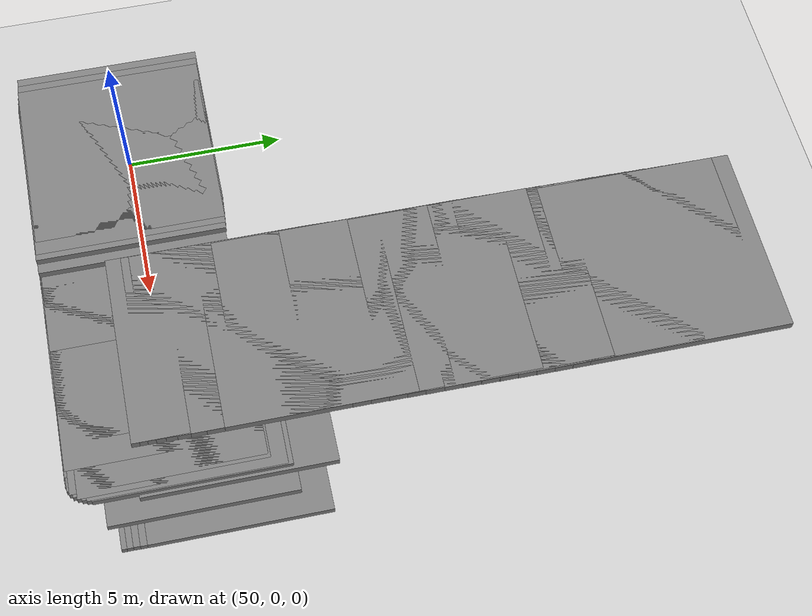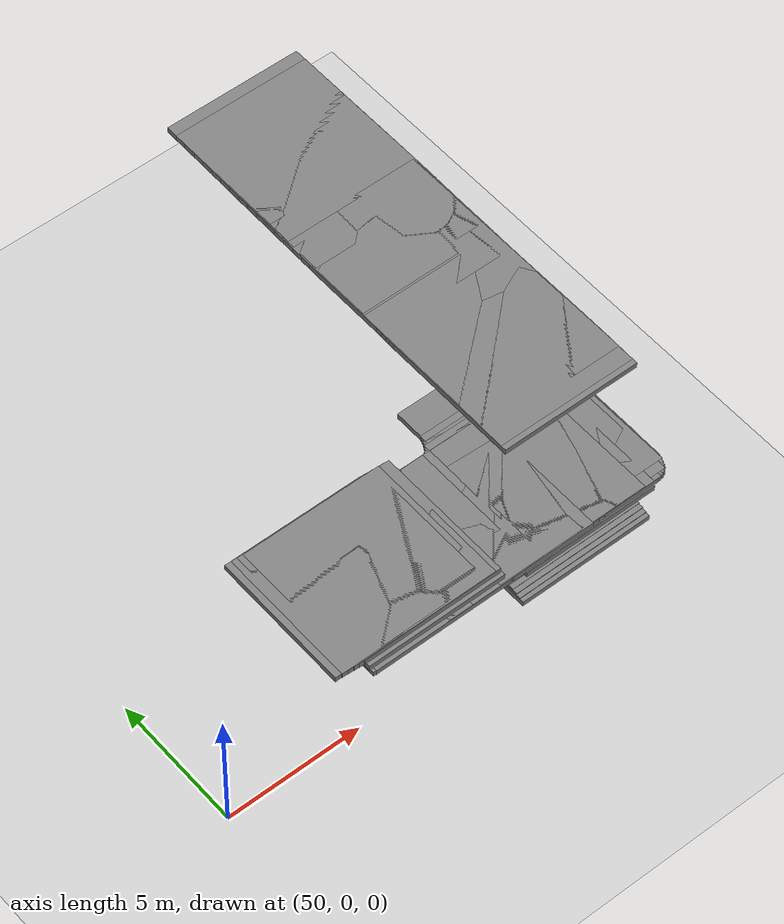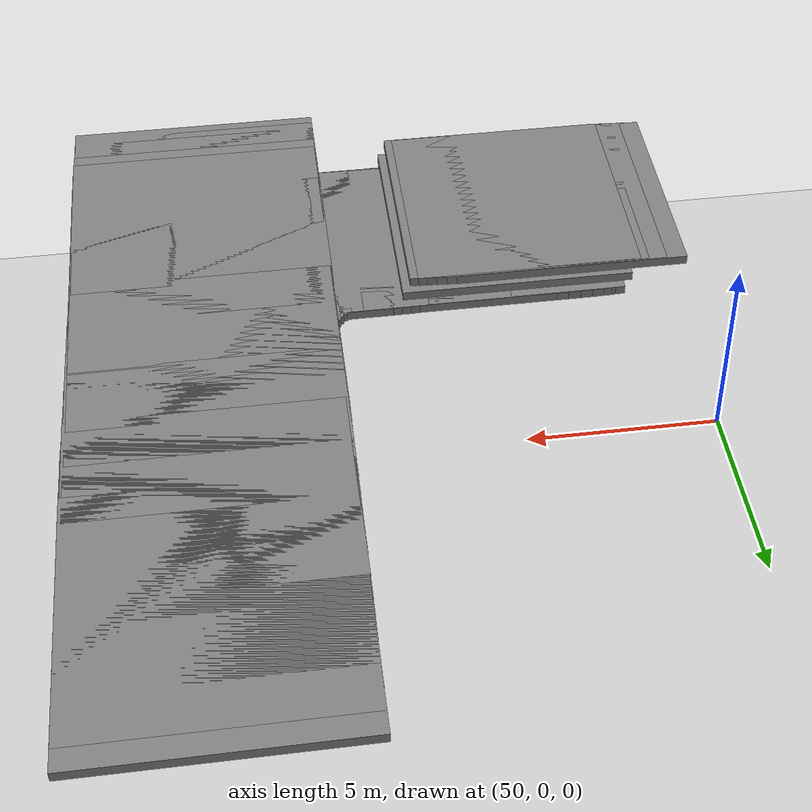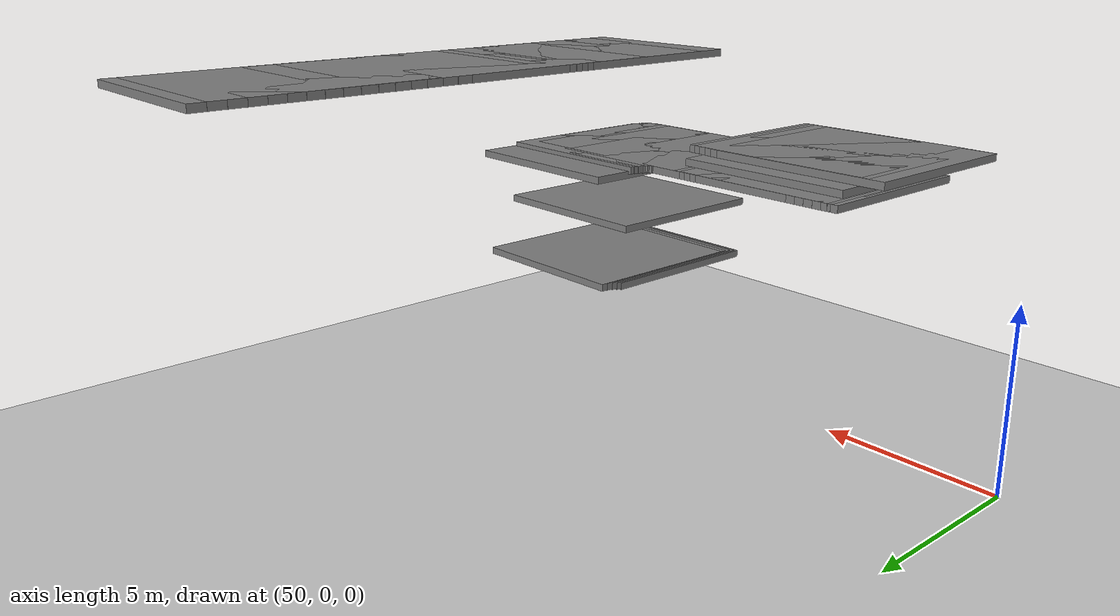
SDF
<sdf version="1.6">
 <world name="default">
  <include><uri>model://sun</uri></include>
  <include><uri>model://ground_plane</uri></include>
  <model name="road_segment_486">
   <static>true</static>
   <link name="link">
    <visual name="visual">
     <geometry><box><size>5.0 5.0 0.2</size></box></geometry>
     <material><ambient>0.5 0.5 0.5 1</ambient><diffuse>0.5 0.5 0.5 1</diffuse></material>
     <pose>62.56571389182134 12.816866879140125 10.0 0 0 0</pose>
    </visual>
    <collision name="collision">
     <geometry><box><size>5.0 5.0 0.2</size></box></geometry>
     <pose>62.56571389182134 12.816866879140125 10.0 0 0 0</pose>
    </collision>
   </link>
  </model>
  <model name="road_segment_487">
   <static>true</static>
   <link name="link">
    <visual name="visual">
     <geometry><box><size>5.0 5.0 0.2</size></box></geometry>
     <material><ambient>0.5 0.5 0.5 1</ambient><diffuse>0.5 0.5 0.5 1</diffuse></material>
     <pose>62.5644501631258 12.390904633492955 10.0 0 0 0</pose>
    </visual>
    <collision name="collision">
     <geometry><box><size>5.0 5.0 0.2</size></box></geometry>
     <pose>62.5644501631258 12.390904633492955 10.0 0 0 0</pose>
    </collision>
   </link>
  </model>
  <model name="road_segment_488">
   <static>true</static>
   <link name="link">
    <visual name="visual">
     <geometry><box><size>5.0 5.0 0.2</size></box></geometry>
     <material><ambient>0.5 0.5 0.5 1</ambient><diffuse>0.5 0.5 0.5 1</diffuse></material>
     <pose>62.56088874591072 11.954523167446627 10.0 0 0 0</pose>
    </visual>
    <collision name="collision">
     <geometry><box><size>5.0 5.0 0.2</size></box></geometry>
     <pose>62.56088874591072 11.954523167446627 10.0 0 0 0</pose>
    </collision>
   </link>
  </model>
  <model name="road_segment_489">
   <static>true</static>
   <link name="link">
    <visual name="visual">
     <geometry><box><size>5.0 5.0 0.2</size></box></geometry>
     <material><ambient>0.5 0.5 0.5 1</ambient><diffuse>0.5 0.5 0.5 1</diffuse></material>
     <pose>62.5576719819703 11.512421345102297 10.0 0 0 0</pose>
    </visual>
    <collision name="collision">
     <geometry><box><size>5.0 5.0 0.2</size></box></geometry>
     <pose>62.5576719819703 11.512421345102297 10.0 0 0 0</pose>
    </collision>
   </link>
  </model>
  <model name="road_segment_490">
   <static>true</static>
   <link name="link">
    <visual name="visual">
     <geometry><box><size>5.0 5.0 0.2</size></box></geometry>
     <material><ambient>0.5 0.5 0.5 1</ambient><diffuse>0.5 0.5 0.5 1</diffuse></material>
     <pose>62.552731951640226 11.069298030564745 10.0 0 0 0</pose>
    </visual>
    <collision name="collision">
     <geometry><box><size>5.0 5.0 0.2</size></box></geometry>
     <pose>62.552731951640226 11.069298030564745 10.0 0 0 0</pose>
    </collision>
   </link>
  </model>
  <model name="road_segment_491">
   <static>true</static>
   <link name="link">
    <visual name="visual">
     <geometry><box><size>5.0 5.0 0.2</size></box></geometry>
     <material><ambient>0.5 0.5 0.5 1</ambient><diffuse>0.5 0.5 0.5 1</diffuse></material>
     <pose>62.54434538853083 10.627196208224044 10.0 0 0 0</pose>
    </visual>
    <collision name="collision">
     <geometry><box><size>5.0 5.0 0.2</size></box></geometry>
     <pose>62.54434538853083 10.627196208224044 10.0 0 0 0</pose>
    </collision>
   </link>
  </model>
  <model name="road_segment_492">
   <static>true</static>
   <link name="link">
    <visual name="visual">
     <geometry><box><size>5.0 5.0 0.2</size></box></geometry>
     <material><ambient>0.5 0.5 0.5 1</ambient><diffuse>0.5 0.5 0.5 1</diffuse></material>
     <pose>62.53768209181109 10.18325569992756 10.0 0 0 0</pose>
    </visual>
    <collision name="collision">
     <geometry><box><size>5.0 5.0 0.2</size></box></geometry>
     <pose>62.53768209181109 10.18325569992756 10.0 0 0 0</pose>
    </collision>
   </link>
  </model>
  <model name="road_segment_493">
   <static>true</static>
   <link name="link">
    <visual name="visual">
     <geometry><box><size>5.0 5.0 0.2</size></box></geometry>
     <material><ambient>0.5 0.5 0.5 1</ambient><diffuse>0.5 0.5 0.5 1</diffuse></material>
     <pose>62.530674141800375 9.741562474462697 10.0 0 0 0</pose>
    </visual>
    <collision name="collision">
     <geometry><box><size>5.0 5.0 0.2</size></box></geometry>
     <pose>62.530674141800375 9.741562474462697 10.0 0 0 0</pose>
    </collision>
   </link>
  </model>
  <model name="road_segment_494">
   <static>true</static>
   <link name="link">
    <visual name="visual">
     <geometry><box><size>5.0 5.0 0.2</size></box></geometry>
     <material><ambient>0.5 0.5 0.5 1</ambient><diffuse>0.5 0.5 0.5 1</diffuse></material>
     <pose>62.52504480492097 9.300482144318844 10.0 0 0 0</pose>
    </visual>
    <collision name="collision">
     <geometry><box><size>5.0 5.0 0.2</size></box></geometry>
     <pose>62.52504480492097 9.300482144318844 10.0 0 0 0</pose>
    </collision>
   </link>
  </model>
  <model name="road_segment_495">
   <static>true</static>
   <link name="link">
    <visual name="visual">
     <geometry><box><size>5.0 5.0 0.2</size></box></geometry>
     <material><ambient>0.5 0.5 0.5 1</ambient><diffuse>0.5 0.5 0.5 1</diffuse></material>
     <pose>62.5225173475462 8.855111546953303 10.0 0 0 0</pose>
    </visual>
    <collision name="collision">
     <geometry><box><size>5.0 5.0 0.2</size></box></geometry>
     <pose>62.5225173475462 8.855111546953303 10.0 0 0 0</pose>
    </collision>
   </link>
  </model>
  <model name="road_segment_496">
   <static>true</static>
   <link name="link">
    <visual name="visual">
     <geometry><box><size>5.0 5.0 0.2</size></box></geometry>
     <material><ambient>0.5 0.5 0.5 1</ambient><diffuse>0.5 0.5 0.5 1</diffuse></material>
     <pose>62.51769220163557 8.412601127729507 10.0 0 0 0</pose>
    </visual>
    <collision name="collision">
     <geometry><box><size>5.0 5.0 0.2</size></box></geometry>
     <pose>62.51769220163557 8.412601127729507 10.0 0 0 0</pose>
    </collision>
   </link>
  </model>
  <model name="road_segment_497">
   <static>true</static>
   <link name="link">
    <visual name="visual">
     <geometry><box><size>5.0 5.0 0.2</size></box></geometry>
     <material><ambient>0.5 0.5 0.5 1</ambient><diffuse>0.5 0.5 0.5 1</diffuse></material>
     <pose>62.51079913606062 7.979488436708017 10.0 0 0 0</pose>
    </visual>
    <collision name="collision">
     <geometry><box><size>5.0 5.0 0.2</size></box></geometry>
     <pose>62.51079913606062 7.979488436708017 10.0 0 0 0</pose>
    </collision>
   </link>
  </model>
  <model name="road_segment_498">
   <static>true</static>
   <link name="link">
    <visual name="visual">
     <geometry><box><size>5.0 5.0 0.2</size></box></geometry>
     <material><ambient>0.5 0.5 0.5 1</ambient><diffuse>0.5 0.5 0.5 1</diffuse></material>
     <pose>62.50471026147078 7.549031625401241 10.0 0 0 0</pose>
    </visual>
    <collision name="collision">
     <geometry><box><size>5.0 5.0 0.2</size></box></geometry>
     <pose>62.50471026147078 7.549031625401241 10.0 0 0 0</pose>
    </collision>
   </link>
  </model>
  <model name="road_segment_499">
   <static>true</static>
   <link name="link">
    <visual name="visual">
     <geometry><box><size>5.0 5.0 0.2</size></box></geometry>
     <material><ambient>0.5 0.5 0.5 1</ambient><diffuse>0.5 0.5 0.5 1</diffuse></material>
     <pose>62.50137861311091 7.114693143748613 10.0 0 0 0</pose>
    </visual>
    <collision name="collision">
     <geometry><box><size>5.0 5.0 0.2</size></box></geometry>
     <pose>62.50137861311091 7.114693143748613 10.0 0 0 0</pose>
    </collision>
   </link>
  </model>
  <model name="road_segment_500">
   <static>true</static>
   <link name="link">
    <visual name="visual">
     <geometry><box><size>5.0 5.0 0.2</size></box></geometry>
     <material><ambient>0.5 0.5 0.5 1</ambient><diffuse>0.5 0.5 0.5 1</diffuse></material>
     <pose>62.49689812049127 6.679741766774971 10.0 0 0 0</pose>
    </visual>
    <collision name="collision">
     <geometry><box><size>5.0 5.0 0.2</size></box></geometry>
     <pose>62.49689812049127 6.679741766774971 10.0 0 0 0</pose>
    </collision>
   </link>
  </model>
  <model name="road_segment_501">
   <static>true</static>
   <link name="link">
    <visual name="visual">
     <geometry><box><size>5.0 5.0 0.2</size></box></geometry>
     <material><ambient>0.5 0.5 0.5 1</ambient><diffuse>0.5 0.5 0.5 1</diffuse></material>
     <pose>62.48885621065655 6.256026803955788 10.0 0 0 0</pose>
    </visual>
    <collision name="collision">
     <geometry><box><size>5.0 5.0 0.2</size></box></geometry>
     <pose>62.48885621065655 6.256026803955788 10.0 0 0 0</pose>
    </collision>
   </link>
  </model>
  <model name="road_segment_502">
   <static>true</static>
   <link name="link">
    <visual name="visual">
     <geometry><box><size>5.0 5.0 0.2</size></box></geometry>
     <material><ambient>0.5 0.5 0.5 1</ambient><diffuse>0.5 0.5 0.5 1</diffuse></material>
     <pose>62.48299710490559 5.847021328757448 10.0 0 0 0</pose>
    </visual>
    <collision name="collision">
     <geometry><box><size>5.0 5.0 0.2</size></box></geometry>
     <pose>62.48299710490559 5.847021328757448 10.0 0 0 0</pose>
    </collision>
   </link>
  </model>
  <model name="road_segment_503">
   <static>true</static>
   <link name="link">
    <visual name="visual">
     <geometry><box><size>5.0 5.0 0.2</size></box></geometry>
     <material><ambient>0.5 0.5 0.5 1</ambient><diffuse>0.5 0.5 0.5 1</diffuse></material>
     <pose>62.48575433113558 5.435972869169039 10.0 0 0 0</pose>
    </visual>
    <collision name="collision">
     <geometry><box><size>5.0 5.0 0.2</size></box></geometry>
     <pose>62.48575433113558 5.435972869169039 10.0 0 0 0</pose>
    </collision>
   </link>
  </model>
  <model name="road_segment_504">
   <static>true</static>
   <link name="link">
    <visual name="visual">
     <geometry><box><size>5.0 5.0 0.2</size></box></geometry>
     <material><ambient>0.5 0.5 0.5 1</ambient><diffuse>0.5 0.5 0.5 1</diffuse></material>
     <pose>62.492877165565744 5.008580534449182 10.0 0 0 0</pose>
    </visual>
    <collision name="collision">
     <geometry><box><size>5.0 5.0 0.2</size></box></geometry>
     <pose>62.492877165565744 5.008580534449182 10.0 0 0 0</pose>
    </collision>
   </link>
  </model>
  <model name="road_segment_505">
   <static>true</static>
   <link name="link">
    <visual name="visual">
     <geometry><box><size>5.0 5.0 0.2</size></box></geometry>
     <material><ambient>0.5 0.5 0.5 1</ambient><diffuse>0.5 0.5 0.5 1</diffuse></material>
     <pose>62.49712788933016 4.5662744136669335 10.0 0 0 0</pose>
    </visual>
    <collision name="collision">
     <geometry><box><size>5.0 5.0 0.2</size></box></geometry>
     <pose>62.49712788933016 4.5662744136669335 10.0 0 0 0</pose>
    </collision>
   </link>
  </model>
  <model name="road_segment_506">
   <static>true</static>
   <link name="link">
    <visual name="visual">
     <geometry><box><size>5.0 5.0 0.2</size></box></geometry>
     <material><ambient>0.5 0.5 0.5 1</ambient><diffuse>0.5 0.5 0.5 1</diffuse></material>
     <pose>62.49908092457504 4.122538203808369 10.0 0 0 0</pose>
    </visual>
    <collision name="collision">
     <geometry><box><size>5.0 5.0 0.2</size></box></geometry>
     <pose>62.49908092457504 4.122538203808369 10.0 0 0 0</pose>
    </collision>
   </link>
  </model>
  <model name="road_segment_507">
   <static>true</static>
   <link name="link">
    <visual name="visual">
     <geometry><box><size>5.0 5.0 0.2</size></box></geometry>
     <material><ambient>0.5 0.5 0.5 1</ambient><diffuse>0.5 0.5 0.5 1</diffuse></material>
     <pose>62.496898120474945 3.7049521941666548 10.0 0 0 0</pose>
    </visual>
    <collision name="collision">
     <geometry><box><size>5.0 5.0 0.2</size></box></geometry>
     <pose>62.496898120474945 3.7049521941666548 10.0 0 0 0</pose>
    </collision>
   </link>
  </model>
  <model name="road_segment_508">
   <static>true</static>
   <link name="link">
    <visual name="visual">
     <geometry><box><size>5.0 5.0 0.2</size></box></geometry>
     <material><ambient>0.5 0.5 0.5 1</ambient><diffuse>0.5 0.5 0.5 1</diffuse></material>
     <pose>62.49322181884041 3.337419302119764 10.0 0 0 0</pose>
    </visual>
    <collision name="collision">
     <geometry><box><size>5.0 5.0 0.2</size></box></geometry>
     <pose>62.49322181884041 3.337419302119764 10.0 0 0 0</pose>
    </collision>
   </link>
  </model>
  <model name="road_segment_509">
   <static>true</static>
   <link name="link">
    <visual name="visual">
     <geometry><box><size>5.0 5.0 0.2</size></box></geometry>
     <material><ambient>0.5 0.5 0.5 1</ambient><diffuse>0.5 0.5 0.5 1</diffuse></material>
     <pose>62.488971095075996 3.0254555855205245 10.0 0 0 0</pose>
    </visual>
    <collision name="collision">
     <geometry><box><size>5.0 5.0 0.2</size></box></geometry>
     <pose>62.488971095075996 3.0254555855205245 10.0 0 0 0</pose>
    </collision>
   </link>
  </model>
  <model name="road_segment_510">
   <static>true</static>
   <link name="link">
    <visual name="visual">
     <geometry><box><size>5.0 5.0 0.2</size></box></geometry>
     <material><ambient>0.5 0.5 0.5 1</ambient><diffuse>0.5 0.5 0.5 1</diffuse></material>
     <pose>62.48184826064583 2.762319195881341 10.0 0 0 0</pose>
    </visual>
    <collision name="collision">
     <geometry><box><size>5.0 5.0 0.2</size></box></geometry>
     <pose>62.48184826064583 2.762319195881341 10.0 0 0 0</pose>
    </collision>
   </link>
  </model>
  <model name="road_segment_511">
   <static>true</static>
   <link name="link">
    <visual name="visual">
     <geometry><box><size>5.0 5.0 0.2</size></box></geometry>
     <material><ambient>0.5 0.5 0.5 1</ambient><diffuse>0.5 0.5 0.5 1</diffuse></material>
     <pose>62.476563577041084 2.536160823734 10.0 0 0 0</pose>
    </visual>
    <collision name="collision">
     <geometry><box><size>5.0 5.0 0.2</size></box></geometry>
     <pose>62.476563577041084 2.536160823734 10.0 0 0 0</pose>
    </collision>
   </link>
  </model>
  <model name="road_segment_512">
   <static>true</static>
   <link name="link">
    <visual name="visual">
     <geometry><box><size>5.0 5.0 0.2</size></box></geometry>
     <material><ambient>0.5 0.5 0.5 1</ambient><diffuse>0.5 0.5 0.5 1</diffuse></material>
     <pose>62.47254262213188 2.3390128299452524 10.0 0 0 0</pose>
    </visual>
    <collision name="collision">
     <geometry><box><size>5.0 5.0 0.2</size></box></geometry>
     <pose>62.47254262213188 2.3390128299452524 10.0 0 0 0</pose>
    </collision>
   </link>
  </model>
  <model name="road_segment_513">
   <static>true</static>
   <link name="link">
    <visual name="visual">
     <geometry><box><size>5.0 5.0 0.2</size></box></geometry>
     <material><ambient>0.5 0.5 0.5 1</ambient><diffuse>0.5 0.5 0.5 1</diffuse></material>
     <pose>62.46771747622125 2.153305548748882 10.0 0 0 0</pose>
    </visual>
    <collision name="collision">
     <geometry><box><size>5.0 5.0 0.2</size></box></geometry>
     <pose>62.46771747622125 2.153305548748882 10.0 0 0 0</pose>
    </collision>
   </link>
  </model>
  <model name="road_segment_514">
   <static>true</static>
   <link name="link">
    <visual name="visual">
     <geometry><box><size>5.0 5.0 0.2</size></box></geometry>
     <material><ambient>0.5 0.5 0.5 1</ambient><diffuse>0.5 0.5 0.5 1</diffuse></material>
     <pose>62.46656863194516 1.960447822181822 10.0 0 0 0</pose>
    </visual>
    <collision name="collision">
     <geometry><box><size>5.0 5.0 0.2</size></box></geometry>
     <pose>62.46656863194516 1.960447822181822 10.0 0 0 0</pose>
    </collision>
   </link>
  </model>
  <model name="road_segment_515">
   <static>true</static>
   <link name="link">
    <visual name="visual">
     <geometry><box><size>5.0 5.0 0.2</size></box></geometry>
     <material><ambient>0.5 0.5 0.5 1</ambient><diffuse>0.5 0.5 0.5 1</diffuse></material>
     <pose>62.46898120490047 1.7606439486819914 6.9252839585173644 0 0 0</pose>
    </visual>
    <collision name="collision">
     <geometry><box><size>5.0 5.0 0.2</size></box></geometry>
     <pose>62.46898120490047 1.7606439486819914 6.9252839585173644 0 0 0</pose>
    </collision>
   </link>
  </model>
  <model name="road_segment_516">
   <static>true</static>
   <link name="link">
    <visual name="visual">
     <geometry><box><size>5.0 5.0 0.2</size></box></geometry>
     <material><ambient>0.5 0.5 0.5 1</ambient><diffuse>0.5 0.5 0.5 1</diffuse></material>
     <pose>62.467372822946594 1.5663561330422453 3.84629524929029 0 0 0</pose>
    </visual>
    <collision name="collision">
     <geometry><box><size>5.0 5.0 0.2</size></box></geometry>
     <pose>62.467372822946594 1.5663561330422453 3.84629524929029 0 0 0</pose>
    </collision>
   </link>
  </model>
  <model name="road_segment_517">
   <static>true</static>
   <link name="link">
    <visual name="visual">
     <geometry><box><size>5.0 5.0 0.2</size></box></geometry>
     <material><ambient>0.5 0.5 0.5 1</ambient><diffuse>0.5 0.5 0.5 1</diffuse></material>
     <pose>62.459216028676096 1.3792187627731884 3.838365972871541 0 0 0</pose>
    </visual>
    <collision name="collision">
     <geometry><box><size>5.0 5.0 0.2</size></box></geometry>
     <pose>62.459216028676096 1.3792187627731884 3.838365972871541 0 0 0</pose>
    </collision>
   </link>
  </model>
  <model name="road_segment_518">
   <static>true</static>
   <link name="link">
    <visual name="visual">
     <geometry><box><size>5.0 5.0 0.2</size></box></geometry>
     <material><ambient>0.5 0.5 0.5 1</ambient><diffuse>0.5 0.5 0.5 1</diffuse></material>
     <pose>62.44634897293074 1.1961673612842718 3.8214839670627 0 0 0</pose>
    </visual>
    <collision name="collision">
     <geometry><box><size>5.0 5.0 0.2</size></box></geometry>
     <pose>62.44634897293074 1.1961673612842718 3.8214839670627 0 0 0</pose>
    </collision>
   </link>
  </model>
  <model name="road_segment_519">
   <static>true</static>
   <link name="link">
    <visual name="visual">
     <geometry><box><size>5.0 5.0 0.2</size></box></geometry>
     <material><ambient>0.5 0.5 0.5 1</ambient><diffuse>0.5 0.5 0.5 1</diffuse></material>
     <pose>62.4332521483465 1.0265996567814315 3.788514870374216 0 0 0</pose>
    </visual>
    <collision name="collision">
     <geometry><box><size>5.0 5.0 0.2</size></box></geometry>
     <pose>62.4332521483465 1.0265996567814315 3.788514870374216 0 0 0</pose>
    </collision>
   </link>
  </model>
  <model name="road_segment_520">
   <static>true</static>
   <link name="link">
    <visual name="visual">
     <geometry><box><size>5.0 5.0 0.2</size></box></geometry>
     <material><ambient>0.5 0.5 0.5 1</ambient><diffuse>0.5 0.5 0.5 1</diffuse></material>
     <pose>62.41946601719659 0.8770531993179722 3.7561121505727857 0 0 0</pose>
    </visual>
    <collision name="collision">
     <geometry><box><size>5.0 5.0 0.2</size></box></geometry>
     <pose>62.41946601719659 0.8770531993179722 3.7561121505727857 0 0 0</pose>
    </collision>
   </link>
  </model>
  <model name="road_segment_521">
   <static>true</static>
   <link name="link">
    <visual name="visual">
     <geometry><box><size>5.0 5.0 0.2</size></box></geometry>
     <material><ambient>0.5 0.5 0.5 1</ambient><diffuse>0.5 0.5 0.5 1</diffuse></material>
     <pose>62.4039566196407 0.744259213861798 5.398401426077383 0 0 0</pose>
    </visual>
    <collision name="collision">
     <geometry><box><size>5.0 5.0 0.2</size></box></geometry>
     <pose>62.4039566196407 0.744259213861798 5.398401426077383 0 0 0</pose>
    </collision>
   </link>
  </model>
  <model name="road_segment_522">
   <static>true</static>
   <link name="link">
    <visual name="visual">
     <geometry><box><size>5.0 5.0 0.2</size></box></geometry>
     <material><ambient>0.5 0.5 0.5 1</ambient><diffuse>0.5 0.5 0.5 1</diffuse></material>
     <pose>62.38419649832041 0.6184113753383946 7.053349721829457 0 0 0</pose>
    </visual>
    <collision name="collision">
     <geometry><box><size>5.0 5.0 0.2</size></box></geometry>
     <pose>62.38419649832041 0.6184113753383946 7.053349721829457 0 0 0</pose>
    </collision>
   </link>
  </model>
  <model name="road_segment_523">
   <static>true</static>
   <link name="link">
    <visual name="visual">
     <geometry><box><size>5.0 5.0 0.2</size></box></geometry>
     <material><ambient>0.5 0.5 0.5 1</ambient><diffuse>0.5 0.5 0.5 1</diffuse></material>
     <pose>62.35156932127108 0.498079594675076 7.053349721829457 0 0 0</pose>
    </visual>
    <collision name="collision">
     <geometry><box><size>5.0 5.0 0.2</size></box></geometry>
     <pose>62.35156932127108 0.498079594675076 7.053349721829457 0 0 0</pose>
    </collision>
   </link>
  </model>
  <model name="road_segment_524">
   <static>true</static>
   <link name="link">
    <visual name="visual">
     <geometry><box><size>5.0 5.0 0.2</size></box></geometry>
     <material><ambient>0.5 0.5 0.5 1</ambient><diffuse>0.5 0.5 0.5 1</diffuse></material>
     <pose>62.308717430270605 0.38367246874404953 7.053349721829457 0 0 0</pose>
    </visual>
    <collision name="collision">
     <geometry><box><size>5.0 5.0 0.2</size></box></geometry>
     <pose>62.308717430270605 0.38367246874404953 7.053349721829457 0 0 0</pose>
    </collision>
   </link>
  </model>
  <model name="road_segment_525">
   <static>true</static>
   <link name="link">
    <visual name="visual">
     <geometry><box><size>5.0 5.0 0.2</size></box></geometry>
     <material><ambient>0.5 0.5 0.5 1</ambient><diffuse>0.5 0.5 0.5 1</diffuse></material>
     <pose>62.25460686549499 0.2747814006731077 7.053349721829457 0 0 0</pose>
    </visual>
    <collision name="collision">
     <geometry><box><size>5.0 5.0 0.2</size></box></geometry>
     <pose>62.25460686549499 0.2747814006731077 7.053349721829457 0 0 0</pose>
    </collision>
   </link>
  </model>
  <model name="road_segment_526">
   <static>true</static>
   <link name="link">
    <visual name="visual">
     <geometry><box><size>5.0 5.0 0.2</size></box></geometry>
     <material><ambient>0.5 0.5 0.5 1</ambient><diffuse>0.5 0.5 0.5 1</diffuse></material>
     <pose>62.18418271219471 0.17630955300132214 7.053349721829457 0 0 0</pose>
    </visual>
    <collision name="collision">
     <geometry><box><size>5.0 5.0 0.2</size></box></geometry>
     <pose>62.18418271219471 0.17630955300132214 7.053349721829457 0 0 0</pose>
    </collision>
   </link>
  </model>
  <model name="road_segment_527">
   <static>true</static>
   <link name="link">
    <visual name="visual">
     <geometry><box><size>5.0 5.0 0.2</size></box></geometry>
     <material><ambient>0.5 0.5 0.5 1</ambient><diffuse>0.5 0.5 0.5 1</diffuse></material>
     <pose>62.09767473920866 0.09581596797158956 7.053349721829457 0 0 0</pose>
    </visual>
    <collision name="collision">
     <geometry><box><size>5.0 5.0 0.2</size></box></geometry>
     <pose>62.09767473920866 0.09581596797158956 7.053349721829457 0 0 0</pose>
    </collision>
   </link>
  </model>
  <model name="road_segment_528">
   <static>true</static>
   <link name="link">
    <visual name="visual">
     <geometry><box><size>5.0 5.0 0.2</size></box></geometry>
     <material><ambient>0.5 0.5 0.5 1</ambient><diffuse>0.5 0.5 0.5 1</diffuse></material>
     <pose>61.997265750653256 0.045558551935218114 7.053349721829457 0 0 0</pose>
    </visual>
    <collision name="collision">
     <geometry><box><size>5.0 5.0 0.2</size></box></geometry>
     <pose>61.997265750653256 0.045558551935218114 7.053349721829457 0 0 0</pose>
    </collision>
   </link>
  </model>
  <model name="road_segment_529">
   <static>true</static>
   <link name="link">
    <visual name="visual">
     <geometry><box><size>5.0 5.0 0.2</size></box></geometry>
     <material><ambient>0.5 0.5 0.5 1</ambient><diffuse>0.5 0.5 0.5 1</diffuse></material>
     <pose>61.88398970635251 0.023902917381603286 7.053349721829457 0 0 0</pose>
    </visual>
    <collision name="collision">
     <geometry><box><size>5.0 5.0 0.2</size></box></geometry>
     <pose>61.88398970635251 0.023902917381603286 7.053349721829457 0 0 0</pose>
    </collision>
   </link>
  </model>
  <model name="road_segment_530">
   <static>true</static>
   <link name="link">
    <visual name="visual">
     <geometry><box><size>5.0 5.0 0.2</size></box></geometry>
     <material><ambient>0.5 0.5 0.5 1</ambient><diffuse>0.5 0.5 0.5 1</diffuse></material>
     <pose>61.75233215384644 0.016548173572995834 7.053349721829457 0 0 0</pose>
    </visual>
    <collision name="collision">
     <geometry><box><size>5.0 5.0 0.2</size></box></geometry>
     <pose>61.75233215384644 0.016548173572995834 7.053349721829457 0 0 0</pose>
    </collision>
   </link>
  </model>
  <model name="road_segment_531">
   <static>true</static>
   <link name="link">
    <visual name="visual">
     <geometry><box><size>5.0 5.0 0.2</size></box></geometry>
     <material><ambient>0.5 0.5 0.5 1</ambient><diffuse>0.5 0.5 0.5 1</diffuse></material>
     <pose>61.60447589725148 0.02206423143308049 7.053349721829457 0 0 0</pose>
    </visual>
    <collision name="collision">
     <geometry><box><size>5.0 5.0 0.2</size></box></geometry>
     <pose>61.60447589725148 0.02206423143308049 7.053349721829457 0 0 0</pose>
    </collision>
   </link>
  </model>
  <model name="road_segment_532">
   <static>true</static>
   <link name="link">
    <visual name="visual">
     <geometry><box><size>5.0 5.0 0.2</size></box></geometry>
     <material><ambient>0.5 0.5 0.5 1</ambient><diffuse>0.5 0.5 0.5 1</diffuse></material>
     <pose>61.44547585130083 0.035956525294993144 7.053349721829457 0 0 0</pose>
    </visual>
    <collision name="collision">
     <geometry><box><size>5.0 5.0 0.2</size></box></geometry>
     <pose>61.44547585130083 0.035956525294993144 7.053349721829457 0 0 0</pose>
    </collision>
   </link>
  </model>
  <model name="road_segment_533">
   <static>true</static>
   <link name="link">
    <visual name="visual">
     <geometry><box><size>5.0 5.0 0.2</size></box></geometry>
     <material><ambient>0.5 0.5 0.5 1</ambient><diffuse>0.5 0.5 0.5 1</diffuse></material>
     <pose>61.27510224713926 0.04494565661783416 7.053349721829457 0 0 0</pose>
    </visual>
    <collision name="collision">
     <geometry><box><size>5.0 5.0 0.2</size></box></geometry>
     <pose>61.27510224713926 0.04494565661783416 7.053349721829457 0 0 0</pose>
    </collision>
   </link>
  </model>
  <model name="road_segment_534">
   <static>true</static>
   <link name="link">
    <visual name="visual">
     <geometry><box><size>5.0 5.0 0.2</size></box></geometry>
     <material><ambient>0.5 0.5 0.5 1</ambient><diffuse>0.5 0.5 0.5 1</diffuse></material>
     <pose>61.097031386417626 0.04678434256998602 7.053349721829457 0 0 0</pose>
    </visual>
    <collision name="collision">
     <geometry><box><size>5.0 5.0 0.2</size></box></geometry>
     <pose>61.097031386417626 0.04678434256998602 7.053349721829457 0 0 0</pose>
    </collision>
   </link>
  </model>
  <model name="road_segment_535">
   <static>true</static>
   <link name="link">
    <visual name="visual">
     <geometry><box><size>5.0 5.0 0.2</size></box></geometry>
     <material><ambient>0.5 0.5 0.5 1</ambient><diffuse>0.5 0.5 0.5 1</diffuse></material>
     <pose>60.91516933964203 0.044332761300450205 7.053349721829457 0 0 0</pose>
    </visual>
    <collision name="collision">
     <geometry><box><size>5.0 5.0 0.2</size></box></geometry>
     <pose>60.91516933964203 0.044332761300450205 7.053349721829457 0 0 0</pose>
    </collision>
   </link>
  </model>
  <model name="road_segment_536">
   <static>true</static>
   <link name="link">
    <visual name="visual">
     <geometry><box><size>5.0 5.0 0.2</size></box></geometry>
     <material><ambient>0.5 0.5 0.5 1</ambient><diffuse>0.5 0.5 0.5 1</diffuse></material>
     <pose>60.72675888056614 0.041881180030914386 7.053349721829457 0 0 0</pose>
    </visual>
    <collision name="collision">
     <geometry><box><size>5.0 5.0 0.2</size></box></geometry>
     <pose>60.72675888056614 0.041881180030914386 7.053349721829457 0 0 0</pose>
    </collision>
   </link>
  </model>
  <model name="road_segment_537">
   <static>true</static>
   <link name="link">
    <visual name="visual">
     <geometry><box><size>5.0 5.0 0.2</size></box></geometry>
     <material><ambient>0.5 0.5 0.5 1</ambient><diffuse>0.5 0.5 0.5 1</diffuse></material>
     <pose>60.52858324524955 0.03881670344399461 7.053349721829457 0 0 0</pose>
    </visual>
    <collision name="collision">
     <geometry><box><size>5.0 5.0 0.2</size></box></geometry>
     <pose>60.52858324524955 0.03881670344399461 7.053349721829457 0 0 0</pose>
    </collision>
   </link>
  </model>
  <model name="road_segment_538">
   <static>true</static>
   <link name="link">
    <visual name="visual">
     <geometry><box><size>5.0 5.0 0.2</size></box></geometry>
     <material><ambient>0.5 0.5 0.5 1</ambient><diffuse>0.5 0.5 0.5 1</diffuse></material>
     <pose>60.32316989108334 0.031461959635387164 7.053349721829457 0 0 0</pose>
    </visual>
    <collision name="collision">
     <geometry><box><size>5.0 5.0 0.2</size></box></geometry>
     <pose>60.32316989108334 0.031461959635387164 7.053349721829457 0 0 0</pose>
    </collision>
   </link>
  </model>
  <model name="road_segment_539">
   <static>true</static>
   <link name="link">
    <visual name="visual">
     <geometry><box><size>5.0 5.0 0.2</size></box></geometry>
     <material><ambient>0.5 0.5 0.5 1</ambient><diffuse>0.5 0.5 0.5 1</diffuse></material>
     <pose>60.11408023528259 0.024924409582081967 7.053349721829457 0 0 0</pose>
    </visual>
    <collision name="collision">
     <geometry><box><size>5.0 5.0 0.2</size></box></geometry>
     <pose>60.11408023528259 0.024924409582081967 7.053349721829457 0 0 0</pose>
    </collision>
   </link>
  </model>
  <model name="road_segment_540">
   <static>true</static>
   <link name="link">
    <visual name="visual">
     <geometry><box><size>5.0 5.0 0.2</size></box></geometry>
     <material><ambient>0.5 0.5 0.5 1</ambient><diffuse>0.5 0.5 0.5 1</diffuse></material>
     <pose>59.90131427783099 0.02002124704301033 7.053349721829457 0 0 0</pose>
    </visual>
    <collision name="collision">
     <geometry><box><size>5.0 5.0 0.2</size></box></geometry>
     <pose>59.90131427783099 0.02002124704301033 7.053349721829457 0 0 0</pose>
    </collision>
   </link>
  </model>
  <model name="road_segment_541">
   <static>true</static>
   <link name="link">
    <visual name="visual">
     <geometry><box><size>5.0 5.0 0.2</size></box></geometry>
     <material><ambient>0.5 0.5 0.5 1</ambient><diffuse>0.5 0.5 0.5 1</diffuse></material>
     <pose>59.68291898349998 0.014300890745007379 7.053349721829457 0 0 0</pose>
    </visual>
    <collision name="collision">
     <geometry><box><size>5.0 5.0 0.2</size></box></geometry>
     <pose>59.68291898349998 0.014300890745007379 7.053349721829457 0 0 0</pose>
    </collision>
   </link>
  </model>
  <model name="road_segment_542">
   <static>true</static>
   <link name="link">
    <visual name="visual">
     <geometry><box><size>5.0 5.0 0.2</size></box></geometry>
     <material><ambient>0.5 0.5 0.5 1</ambient><diffuse>0.5 0.5 0.5 1</diffuse></material>
     <pose>59.45946877441945 0.008580534447004427 7.053349721829457 0 0 0</pose>
    </visual>
    <collision name="collision">
     <geometry><box><size>5.0 5.0 0.2</size></box></geometry>
     <pose>59.45946877441945 0.008580534447004427 7.053349721829457 0 0 0</pose>
    </collision>
   </link>
  </model>
  <model name="road_segment_543">
   <static>true</static>
   <link name="link">
    <visual name="visual">
     <geometry><box><size>5.0 5.0 0.2</size></box></geometry>
     <material><ambient>0.5 0.5 0.5 1</ambient><diffuse>0.5 0.5 0.5 1</diffuse></material>
     <pose>59.23199761041339 0.00735474381223652 7.053349721829457 0 0 0</pose>
    </visual>
    <collision name="collision">
     <geometry><box><size>5.0 5.0 0.2</size></box></geometry>
     <pose>59.23199761041339 0.00735474381223652 7.053349721829457 0 0 0</pose>
    </collision>
   </link>
  </model>
  <model name="road_segment_544">
   <static>true</static>
   <link name="link">
    <visual name="visual">
     <geometry><box><size>5.0 5.0 0.2</size></box></geometry>
     <material><ambient>0.5 0.5 0.5 1</ambient><diffuse>0.5 0.5 0.5 1</diffuse></material>
     <pose>58.99924176278627 0.011440712596005905 7.053349721829457 0 0 0</pose>
    </visual>
    <collision name="collision">
     <geometry><box><size>5.0 5.0 0.2</size></box></geometry>
     <pose>58.99924176278627 0.011440712596005905 7.053349721829457 0 0 0</pose>
    </collision>
   </link>
  </model>
  <model name="road_segment_545">
   <static>true</static>
   <link name="link">
    <visual name="visual">
     <geometry><box><size>5.0 5.0 0.2</size></box></geometry>
     <material><ambient>0.5 0.5 0.5 1</ambient><diffuse>0.5 0.5 0.5 1</diffuse></material>
     <pose>58.76131611597384 0.015730979817693586 7.053349721829457 0 0 0</pose>
    </visual>
    <collision name="collision">
     <geometry><box><size>5.0 5.0 0.2</size></box></geometry>
     <pose>58.76131611597384 0.015730979817693586 7.053349721829457 0 0 0</pose>
    </collision>
   </link>
  </model>
  <model name="road_segment_546">
   <static>true</static>
   <link name="link">
    <visual name="visual">
     <geometry><box><size>5.0 5.0 0.2</size></box></geometry>
     <material><ambient>0.5 0.5 0.5 1</ambient><diffuse>0.5 0.5 0.5 1</diffuse></material>
     <pose>58.5202885896731 0.02247282830891708 7.053349721829457 0 0 0</pose>
    </visual>
    <collision name="collision">
     <geometry><box><size>5.0 5.0 0.2</size></box></geometry>
     <pose>58.5202885896731 0.02247282830891708 7.053349721829457 0 0 0</pose>
    </collision>
   </link>
  </model>
  <model name="road_segment_547">
   <static>true</static>
   <link name="link">
    <visual name="visual">
     <geometry><box><size>5.0 5.0 0.2</size></box></geometry>
     <material><ambient>0.5 0.5 0.5 1</ambient><diffuse>0.5 0.5 0.5 1</diffuse></material>
     <pose>58.27661872156183 0.030236168996990193 7.053349721829457 0 0 0</pose>
    </visual>
    <collision name="collision">
     <geometry><box><size>5.0 5.0 0.2</size></box></geometry>
     <pose>58.27661872156183 0.030236168996990193 7.053349721829457 0 0 0</pose>
    </collision>
   </link>
  </model>
  <model name="road_segment_548">
   <static>true</static>
   <link name="link">
    <visual name="visual">
     <geometry><box><size>5.0 5.0 0.2</size></box></geometry>
     <material><ambient>0.5 0.5 0.5 1</ambient><diffuse>0.5 0.5 0.5 1</diffuse></material>
     <pose>58.031455355899794 0.03289204870807337 7.053349721829457 0 0 0</pose>
    </visual>
    <collision name="collision">
     <geometry><box><size>5.0 5.0 0.2</size></box></geometry>
     <pose>58.031455355899794 0.03289204870807337 7.053349721829457 0 0 0</pose>
    </collision>
   </link>
  </model>
  <model name="road_segment_549">
   <static>true</static>
   <link name="link">
    <visual name="visual">
     <geometry><box><size>5.0 5.0 0.2</size></box></geometry>
     <material><ambient>0.5 0.5 0.5 1</ambient><diffuse>0.5 0.5 0.5 1</diffuse></material>
     <pose>57.78192638205389 0.03330064558753903 7.053349721829457 0 0 0</pose>
    </visual>
    <collision name="collision">
     <geometry><box><size>5.0 5.0 0.2</size></box></geometry>
     <pose>57.78192638205389 0.03330064558753903 7.053349721829457 0 0 0</pose>
    </collision>
   </link>
  </model>
  <model name="road_segment_550">
   <static>true</static>
   <link name="link">
    <visual name="visual">
     <geometry><box><size>5.0 5.0 0.2</size></box></geometry>
     <material><ambient>0.5 0.5 0.5 1</ambient><diffuse>0.5 0.5 0.5 1</diffuse></material>
     <pose>57.52688295574802 0.033504944025457326 7.053349721829457 0 0 0</pose>
    </visual>
    <collision name="collision">
     <geometry><box><size>5.0 5.0 0.2</size></box></geometry>
     <pose>57.52688295574802 0.033504944025457326 7.053349721829457 0 0 0</pose>
    </collision>
   </link>
  </model>
  <model name="road_segment_551">
   <static>true</static>
   <link name="link">
    <visual name="visual">
     <geometry><box><size>5.0 5.0 0.2</size></box></geometry>
     <material><ambient>0.5 0.5 0.5 1</ambient><diffuse>0.5 0.5 0.5 1</diffuse></material>
     <pose>57.266210192546424 0.033300645583909966 7.053349721829457 0 0 0</pose>
    </visual>
    <collision name="collision">
     <geometry><box><size>5.0 5.0 0.2</size></box></geometry>
     <pose>57.266210192546424 0.033300645583909966 7.053349721829457 0 0 0</pose>
    </collision>
   </link>
  </model>
  <model name="road_segment_552">
   <static>true</static>
   <link name="link">
    <visual name="visual">
     <geometry><box><size>5.0 5.0 0.2</size></box></geometry>
     <material><ambient>0.5 0.5 0.5 1</ambient><diffuse>0.5 0.5 0.5 1</diffuse></material>
     <pose>57.001976012129745 0.0328920487044443 7.053349721829457 0 0 0</pose>
    </visual>
    <collision name="collision">
     <geometry><box><size>5.0 5.0 0.2</size></box></geometry>
     <pose>57.001976012129745 0.0328920487044443 7.053349721829457 0 0 0</pose>
    </collision>
   </link>
  </model>
  <model name="road_segment_553">
   <static>true</static>
   <link name="link">
    <visual name="visual">
     <geometry><box><size>5.0 5.0 0.2</size></box></geometry>
     <material><ambient>0.5 0.5 0.5 1</ambient><diffuse>0.5 0.5 0.5 1</diffuse></material>
     <pose>56.737512062857846 0.03166625806967639 7.053349721829457 0 0 0</pose>
    </visual>
    <collision name="collision">
     <geometry><box><size>5.0 5.0 0.2</size></box></geometry>
     <pose>56.737512062857846 0.03166625806967639 7.053349721829457 0 0 0</pose>
    </collision>
   </link>
  </model>
  <model name="road_segment_554">
   <static>true</static>
   <link name="link">
    <visual name="visual">
     <geometry><box><size>5.0 5.0 0.2</size></box></geometry>
     <material><ambient>0.5 0.5 0.5 1</ambient><diffuse>0.5 0.5 0.5 1</diffuse></material>
     <pose>56.48982123982104 0.028806079924303986 7.053349721829457 0 0 0</pose>
    </visual>
    <collision name="collision">
     <geometry><box><size>5.0 5.0 0.2</size></box></geometry>
     <pose>56.48982123982104 0.028806079924303986 7.053349721829457 0 0 0</pose>
    </collision>
   </link>
  </model>
  <model name="road_segment_555">
   <static>true</static>
   <link name="link">
    <visual name="visual">
     <geometry><box><size>5.0 5.0 0.2</size></box></geometry>
     <material><ambient>0.5 0.5 0.5 1</ambient><diffuse>0.5 0.5 0.5 1</diffuse></material>
     <pose>56.31060153485598 0.02206423143308049 7.053349721829457 0 0 0</pose>
    </visual>
    <collision name="collision">
     <geometry><box><size>5.0 5.0 0.2</size></box></geometry>
     <pose>56.31060153485598 0.02206423143308049 7.053349721829457 0 0 0</pose>
    </collision>
   </link>
  </model>
  <model name="road_segment_556">
   <static>true</static>
   <link name="link">
    <visual name="visual">
     <geometry><box><size>5.0 5.0 0.2</size></box></geometry>
     <material><ambient>0.5 0.5 0.5 1</ambient><diffuse>0.5 0.5 0.5 1</diffuse></material>
     <pose>56.223174486481696 0.014096592303460016 7.053349721829457 0 0 0</pose>
    </visual>
    <collision name="collision">
     <geometry><box><size>5.0 5.0 0.2</size></box></geometry>
     <pose>56.223174486481696 0.014096592303460016 7.053349721829457 0 0 0</pose>
    </collision>
   </link>
  </model>
  <model name="road_segment_557">
   <static>true</static>
   <link name="link">
    <visual name="visual">
     <geometry><box><size>5.0 5.0 0.2</size></box></geometry>
     <material><ambient>0.5 0.5 0.5 1</ambient><diffuse>0.5 0.5 0.5 1</diffuse></material>
     <pose>56.17882909793046 0.007150445370689155 7.053349721829457 0 0 0</pose>
    </visual>
    <collision name="collision">
     <geometry><box><size>5.0 5.0 0.2</size></box></geometry>
     <pose>56.17882909793046 0.007150445370689155 7.053349721829457 0 0 0</pose>
    </collision>
   </link>
  </model>
  <model name="road_segment_558">
   <static>true</static>
   <link name="link">
    <visual name="visual">
     <geometry><box><size>5.0 5.0 0.2</size></box></geometry>
     <material><ambient>0.5 0.5 0.5 1</ambient><diffuse>0.5 0.5 0.5 1</diffuse></material>
     <pose>56.11518312576936 0.0018386859521518626 7.053349721829457 0 0 0</pose>
    </visual>
    <collision name="collision">
     <geometry><box><size>5.0 5.0 0.2</size></box></geometry>
     <pose>56.11518312576936 0.0018386859521518626 7.053349721829457 0 0 0</pose>
    </collision>
   </link>
  </model>
  <model name="road_segment_559">
   <static>true</static>
   <link name="link">
    <visual name="visual">
     <geometry><box><size>5.0 5.0 0.2</size></box></geometry>
     <material><ambient>0.5 0.5 0.5 1</ambient><diffuse>0.5 0.5 0.5 1</diffuse></material>
     <pose>56.013740177373634 0.010419220399156291 7.053349721829457 0 0 0</pose>
    </visual>
    <collision name="collision">
     <geometry><box><size>5.0 5.0 0.2</size></box></geometry>
     <pose>56.013740177373634 0.010419220399156291 7.053349721829457 0 0 0</pose>
    </collision>
   </link>
  </model>
  <model name="road_segment_560">
   <static>true</static>
   <link name="link">
    <visual name="visual">
     <geometry><box><size>5.0 5.0 0.2</size></box></geometry>
     <material><ambient>0.5 0.5 0.5 1</ambient><diffuse>0.5 0.5 0.5 1</diffuse></material>
     <pose>55.88369100683778 0.033300645587539035 7.4522032557728215 0 0 0</pose>
    </visual>
    <collision name="collision">
     <geometry><box><size>5.0 5.0 0.2</size></box></geometry>
     <pose>55.88369100683778 0.033300645587539035 7.4522032557728215 0 0 0</pose>
    </collision>
   </link>
  </model>
  <model name="road_segment_561">
   <static>true</static>
   <link name="link">
    <visual name="visual">
     <geometry><box><size>5.0 5.0 0.2</size></box></geometry>
     <material><ambient>0.5 0.5 0.5 1</ambient><diffuse>0.5 0.5 0.5 1</diffuse></material>
     <pose>55.73009052892765 0.05495628013752479 7.851056789716186 0 0 0</pose>
    </visual>
    <collision name="collision">
     <geometry><box><size>5.0 5.0 0.2</size></box></geometry>
     <pose>55.73009052892765 0.05495628013752479 7.851056789716186 0 0 0</pose>
    </collision>
   </link>
  </model>
  <model name="road_segment_562">
   <static>true</static>
   <link name="link">
    <visual name="visual">
     <geometry><box><size>5.0 5.0 0.2</size></box></geometry>
     <material><ambient>0.5 0.5 0.5 1</ambient><diffuse>0.5 0.5 0.5 1</diffuse></material>
     <pose>55.556844814116644 0.06884857399943745 7.851056789716186 0 0 0</pose>
    </visual>
    <collision name="collision">
     <geometry><box><size>5.0 5.0 0.2</size></box></geometry>
     <pose>55.556844814116644 0.06884857399943745 7.851056789716186 0 0 0</pose>
    </collision>
   </link>
  </model>
  <model name="road_segment_563">
   <static>true</static>
   <link name="link">
    <visual name="visual">
     <geometry><box><size>5.0 5.0 0.2</size></box></geometry>
     <material><ambient>0.5 0.5 0.5 1</ambient><diffuse>0.5 0.5 0.5 1</diffuse></material>
     <pose>55.36900877717064 0.08110648035074561 7.851056789716186 0 0 0</pose>
    </visual>
    <collision name="collision">
     <geometry><box><size>5.0 5.0 0.2</size></box></geometry>
     <pose>55.36900877717064 0.08110648035074561 7.851056789716186 0 0 0</pose>
    </collision>
   </link>
  </model>
  <model name="road_segment_564">
   <static>true</static>
   <link name="link">
    <visual name="visual">
     <geometry><box><size>5.0 5.0 0.2</size></box></geometry>
     <material><ambient>0.5 0.5 0.5 1</ambient><diffuse>0.5 0.5 0.5 1</diffuse></material>
     <pose>55.16922475990016 0.0952030726542056 7.851056789716186 0 0 0</pose>
    </visual>
    <collision name="collision">
     <geometry><box><size>5.0 5.0 0.2</size></box></geometry>
     <pose>55.16922475990016 0.0952030726542056 7.851056789716186 0 0 0</pose>
    </collision>
   </link>
  </model>
  <model name="road_segment_565">
   <static>true</static>
   <link name="link">
    <visual name="visual">
     <geometry><box><size>5.0 5.0 0.2</size></box></geometry>
     <material><ambient>0.5 0.5 0.5 1</ambient><diffuse>0.5 0.5 0.5 1</diffuse></material>
     <pose>54.95749276228888 0.10766527744343206 7.851056789716186 0 0 0</pose>
    </visual>
    <collision name="collision">
     <geometry><box><size>5.0 5.0 0.2</size></box></geometry>
     <pose>54.95749276228888 0.10766527744343206 7.851056789716186 0 0 0</pose>
    </collision>
   </link>
  </model>
  <model name="road_segment_566">
   <static>true</static>
   <link name="link">
    <visual name="visual">
     <geometry><box><size>5.0 5.0 0.2</size></box></geometry>
     <material><ambient>0.5 0.5 0.5 1</ambient><diffuse>0.5 0.5 0.5 1</diffuse></material>
     <pose>54.73346813106214 0.1207403775464134 7.851056789716186 0 0 0</pose>
    </visual>
    <collision name="collision">
     <geometry><box><size>5.0 5.0 0.2</size></box></geometry>
     <pose>54.73346813106214 0.1207403775464134 7.851056789716186 0 0 0</pose>
    </collision>
   </link>
  </model>
 </world>
</sdf>
